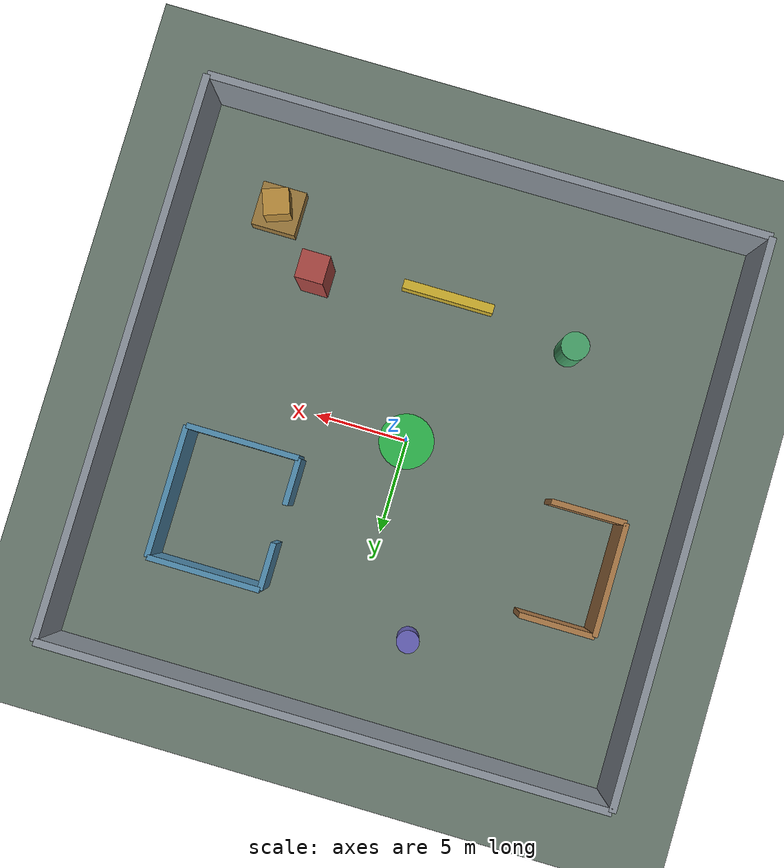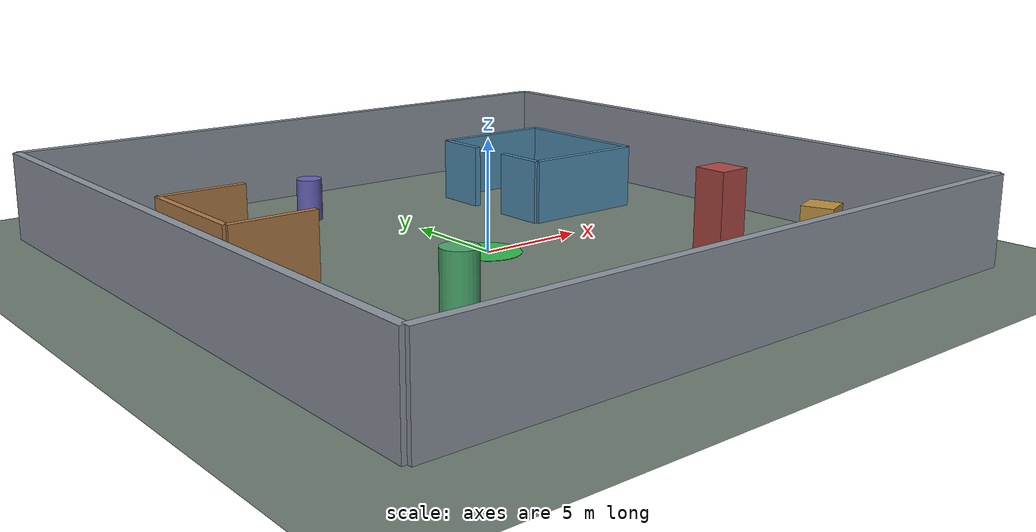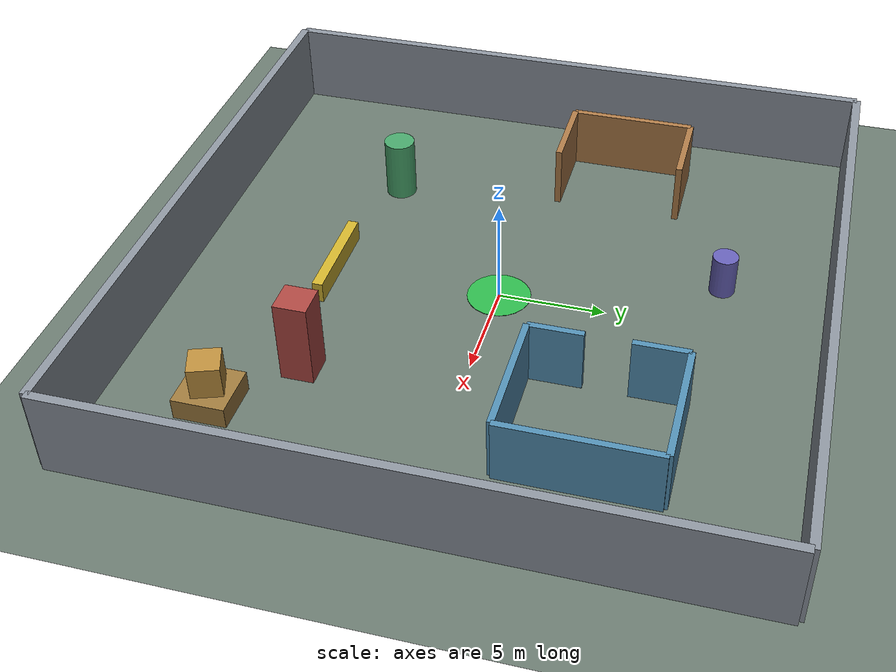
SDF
<?xml version="1.0" encoding="UTF-8"?>
<sdf version="1.9">
  <world name="mapping_test">
    <!-- Match PX4 v1.17's default Gazebo physics settings. -->
    <physics type="ode">
      <max_step_size>0.004</max_step_size>
      <real_time_factor>1.0</real_time_factor>
      <real_time_update_rate>250</real_time_update_rate>
    </physics>

    <gravity>0 0 -9.8</gravity>
    <magnetic_field>6e-06 2.3e-05 -4.2e-05</magnetic_field>
    <atmosphere type="adiabatic"/>

    <scene>
      <grid>true</grid>
      <ambient>0.45 0.45 0.45 1</ambient>
      <background>0.72 0.78 0.82 1</background>
      <shadows>true</shadows>
    </scene>

    <!--
      Start south of the X500 looking north. This aligns the initial Gazebo
      view with the drone's initial heading, so W looks like forward motion.
    -->
    <gui fullscreen="false">
      <plugin filename="MinimalScene" name="3D View">
        <gz-gui>
          <title>3D View</title>
          <property type="bool" key="showTitleBar">false</property>
          <property type="string" key="state">docked</property>
        </gz-gui>
        <engine>ogre2</engine>
        <scene>scene</scene>
        <ambient_light>0.45 0.45 0.45</ambient_light>
        <background_color>0.72 0.78 0.82</background_color>
        <camera_pose>0 -6 6 0 0.5 1.5708</camera_pose>
        <camera_clip>
          <near>0.25</near>
          <far>25000</far>
        </camera_clip>
      </plugin>

      <!-- Preserve PX4's standard Gazebo scene controls around the new view. -->
      <plugin filename="EntityContextMenuPlugin" name="Entity context menu">
        <gz-gui>
          <property key="state" type="string">floating</property>
          <property key="width" type="double">5</property>
          <property key="height" type="double">5</property>
          <property key="showTitleBar" type="bool">false</property>
        </gz-gui>
      </plugin>
      <plugin filename="GzSceneManager" name="Scene Manager">
        <gz-gui>
          <property key="resizable" type="bool">false</property>
          <property key="width" type="double">5</property>
          <property key="height" type="double">5</property>
          <property key="state" type="string">floating</property>
          <property key="showTitleBar" type="bool">false</property>
        </gz-gui>
      </plugin>
      <plugin filename="InteractiveViewControl" name="Interactive view control">
        <gz-gui>
          <property key="resizable" type="bool">false</property>
          <property key="width" type="double">5</property>
          <property key="height" type="double">5</property>
          <property key="state" type="string">floating</property>
          <property key="showTitleBar" type="bool">false</property>
        </gz-gui>
      </plugin>
      <plugin filename="CameraTracking" name="Camera Tracking">
        <gz-gui>
          <property key="resizable" type="bool">false</property>
          <property key="width" type="double">5</property>
          <property key="height" type="double">5</property>
          <property key="state" type="string">floating</property>
          <property key="showTitleBar" type="bool">false</property>
        </gz-gui>
      </plugin>
      <plugin filename="MarkerManager" name="Marker manager">
        <gz-gui>
          <property key="resizable" type="bool">false</property>
          <property key="width" type="double">5</property>
          <property key="height" type="double">5</property>
          <property key="state" type="string">floating</property>
          <property key="showTitleBar" type="bool">false</property>
        </gz-gui>
      </plugin>
      <plugin filename="SelectEntities" name="Select Entities">
        <gz-gui>
          <property key="resizable" type="bool">false</property>
          <property key="width" type="double">5</property>
          <property key="height" type="double">5</property>
          <property key="state" type="string">floating</property>
          <property key="showTitleBar" type="bool">false</property>
        </gz-gui>
      </plugin>
      <plugin filename="Spawn" name="Spawn Entities">
        <gz-gui>
          <property key="resizable" type="bool">false</property>
          <property key="width" type="double">5</property>
          <property key="height" type="double">5</property>
          <property key="state" type="string">floating</property>
          <property key="showTitleBar" type="bool">false</property>
        </gz-gui>
      </plugin>
      <plugin filename="VisualizationCapabilities" name="Visualization Capabilities">
        <gz-gui>
          <property key="resizable" type="bool">false</property>
          <property key="width" type="double">5</property>
          <property key="height" type="double">5</property>
          <property key="state" type="string">floating</property>
          <property key="showTitleBar" type="bool">false</property>
        </gz-gui>
      </plugin>

      <plugin filename="WorldControl" name="World control">
        <gz-gui>
          <title>World control</title>
          <property type="bool" key="showTitleBar">false</property>
          <property type="bool" key="resizable">false</property>
          <property type="double" key="height">72</property>
          <property type="double" key="width">121</property>
          <property type="double" key="z">1</property>
          <property type="string" key="state">floating</property>
          <anchors target="3D View">
            <line own="left" target="left"/>
            <line own="bottom" target="bottom"/>
          </anchors>
        </gz-gui>
        <play_pause>true</play_pause>
        <step>true</step>
        <start_paused>true</start_paused>
      </plugin>

      <plugin filename="WorldStats" name="World stats">
        <gz-gui>
          <title>World stats</title>
          <property type="bool" key="showTitleBar">false</property>
          <property type="bool" key="resizable">false</property>
          <property type="double" key="height">110</property>
          <property type="double" key="width">290</property>
          <property type="double" key="z">1</property>
          <property type="string" key="state">floating</property>
          <anchors target="3D View">
            <line own="right" target="right"/>
            <line own="bottom" target="bottom"/>
          </anchors>
        </gz-gui>
        <sim_time>true</sim_time>
        <real_time>true</real_time>
        <real_time_factor>true</real_time_factor>
        <iterations>true</iterations>
      </plugin>

      <plugin filename="EntityTree" name="Entity tree"/>
    </gui>

    <model name="ground_plane">
      <static>true</static>
      <link name="ground_link">
        <collision name="ground_collision">
          <geometry>
            <plane>
              <normal>0 0 1</normal>
              <size>50 50</size>
            </plane>
          </geometry>
          <surface>
            <friction>
              <ode/>
            </friction>
            <bounce/>
            <contact/>
          </surface>
        </collision>

        <visual name="ground_visual">
          <geometry>
            <plane>
              <normal>0 0 1</normal>
              <size>50 50</size>
            </plane>
          </geometry>
          <material>
            <ambient>0.32 0.36 0.34 1</ambient>
            <diffuse>0.42 0.48 0.44 1</diffuse>
            <specular>0.08 0.08 0.08 1</specular>
          </material>
        </visual>
      </link>
    </model>

    <!--
      All obstacles share one static link. Each collision has a matching visual
      at the same pose and size so the LiDAR sees the geometry shown in Gazebo.
    -->
    <model name="mapping_geometry">
      <static>true</static>
      <link name="obstacles">
        <!-- Perimeter walls: a 30 m by 30 m flying area. -->
        <collision name="north_wall_collision">
          <pose>0 15 2 0 0 0</pose>
          <geometry><box><size>30 0.4 4</size></box></geometry>
        </collision>
        <visual name="north_wall_visual">
          <pose>0 15 2 0 0 0</pose>
          <geometry><box><size>30 0.4 4</size></box></geometry>
          <material>
            <ambient>0.35 0.38 0.42 1</ambient>
            <diffuse>0.55 0.58 0.62 1</diffuse>
          </material>
        </visual>

        <collision name="south_wall_collision">
          <pose>0 -15 2 0 0 0</pose>
          <geometry><box><size>30 0.4 4</size></box></geometry>
        </collision>
        <visual name="south_wall_visual">
          <pose>0 -15 2 0 0 0</pose>
          <geometry><box><size>30 0.4 4</size></box></geometry>
          <material>
            <ambient>0.35 0.38 0.42 1</ambient>
            <diffuse>0.55 0.58 0.62 1</diffuse>
          </material>
        </visual>

        <collision name="east_wall_collision">
          <pose>15 0 2 0 0 0</pose>
          <geometry><box><size>0.4 30 4</size></box></geometry>
        </collision>
        <visual name="east_wall_visual">
          <pose>15 0 2 0 0 0</pose>
          <geometry><box><size>0.4 30 4</size></box></geometry>
          <material>
            <ambient>0.35 0.38 0.42 1</ambient>
            <diffuse>0.55 0.58 0.62 1</diffuse>
          </material>
        </visual>

        <collision name="west_wall_collision">
          <pose>-15 0 2 0 0 0</pose>
          <geometry><box><size>0.4 30 4</size></box></geometry>
        </collision>
        <visual name="west_wall_visual">
          <pose>-15 0 2 0 0 0</pose>
          <geometry><box><size>0.4 30 4</size></box></geometry>
          <material>
            <ambient>0.35 0.38 0.42 1</ambient>
            <diffuse>0.55 0.58 0.62 1</diffuse>
          </material>
        </visual>

        <!-- Interior room in the northeast, with a west-facing doorway. -->
        <collision name="room_north_collision">
          <pose>8 9.5 1.5 0 0 0</pose>
          <geometry><box><size>6 0.3 3</size></box></geometry>
        </collision>
        <visual name="room_north_visual">
          <pose>8 9.5 1.5 0 0 0</pose>
          <geometry><box><size>6 0.3 3</size></box></geometry>
          <material>
            <ambient>0.22 0.36 0.46 1</ambient>
            <diffuse>0.32 0.56 0.70 1</diffuse>
          </material>
        </visual>

        <collision name="room_south_collision">
          <pose>8 2.5 1.5 0 0 0</pose>
          <geometry><box><size>6 0.3 3</size></box></geometry>
        </collision>
        <visual name="room_south_visual">
          <pose>8 2.5 1.5 0 0 0</pose>
          <geometry><box><size>6 0.3 3</size></box></geometry>
          <material>
            <ambient>0.22 0.36 0.46 1</ambient>
            <diffuse>0.32 0.56 0.70 1</diffuse>
          </material>
        </visual>

        <collision name="room_east_collision">
          <pose>11 6 1.5 0 0 0</pose>
          <geometry><box><size>0.3 7 3</size></box></geometry>
        </collision>
        <visual name="room_east_visual">
          <pose>11 6 1.5 0 0 0</pose>
          <geometry><box><size>0.3 7 3</size></box></geometry>
          <material>
            <ambient>0.22 0.36 0.46 1</ambient>
            <diffuse>0.32 0.56 0.70 1</diffuse>
          </material>
        </visual>

        <collision name="room_west_north_collision">
          <pose>5 8.25 1.5 0 0 0</pose>
          <geometry><box><size>0.3 2.5 3</size></box></geometry>
        </collision>
        <visual name="room_west_north_visual">
          <pose>5 8.25 1.5 0 0 0</pose>
          <geometry><box><size>0.3 2.5 3</size></box></geometry>
          <material>
            <ambient>0.22 0.36 0.46 1</ambient>
            <diffuse>0.32 0.56 0.70 1</diffuse>
          </material>
        </visual>

        <collision name="room_west_south_collision">
          <pose>5 3.75 1.5 0 0 0</pose>
          <geometry><box><size>0.3 2.5 3</size></box></geometry>
        </collision>
        <visual name="room_west_south_visual">
          <pose>5 3.75 1.5 0 0 0</pose>
          <geometry><box><size>0.3 2.5 3</size></box></geometry>
          <material>
            <ambient>0.22 0.36 0.46 1</ambient>
            <diffuse>0.32 0.56 0.70 1</diffuse>
          </material>
        </visual>

        <!-- A three-sided alcove, open toward the takeoff area. -->
        <collision name="alcove_back_collision">
          <pose>-12 4 1.5 0 0 0</pose>
          <geometry><box><size>0.3 6 3</size></box></geometry>
        </collision>
        <visual name="alcove_back_visual">
          <pose>-12 4 1.5 0 0 0</pose>
          <geometry><box><size>0.3 6 3</size></box></geometry>
          <material>
            <ambient>0.48 0.32 0.20 1</ambient>
            <diffuse>0.68 0.48 0.28 1</diffuse>
          </material>
        </visual>

        <collision name="alcove_north_collision">
          <pose>-10 7 1.5 0 0 0</pose>
          <geometry><box><size>4 0.3 3</size></box></geometry>
        </collision>
        <visual name="alcove_north_visual">
          <pose>-10 7 1.5 0 0 0</pose>
          <geometry><box><size>4 0.3 3</size></box></geometry>
          <material>
            <ambient>0.48 0.32 0.20 1</ambient>
            <diffuse>0.68 0.48 0.28 1</diffuse>
          </material>
        </visual>

        <collision name="alcove_south_collision">
          <pose>-10 1 1.5 0 0 0</pose>
          <geometry><box><size>4 0.3 3</size></box></geometry>
        </collision>
        <visual name="alcove_south_visual">
          <pose>-10 1 1.5 0 0 0</pose>
          <geometry><box><size>4 0.3 3</size></box></geometry>
          <material>
            <ambient>0.48 0.32 0.20 1</ambient>
            <diffuse>0.68 0.48 0.28 1</diffuse>
          </material>
        </visual>

        <!-- Height and shape variation for recognizable LiDAR geometry. -->
        <collision name="low_barrier_collision">
          <pose>0 -8 0.5 0 0 0</pose>
          <geometry><box><size>5 0.5 1</size></box></geometry>
        </collision>
        <visual name="low_barrier_visual">
          <pose>0 -8 0.5 0 0 0</pose>
          <geometry><box><size>5 0.5 1</size></box></geometry>
          <material>
            <ambient>0.55 0.46 0.12 1</ambient>
            <diffuse>0.82 0.70 0.18 1</diffuse>
          </material>
        </visual>

        <collision name="box_pillar_collision">
          <pose>7 -7 2 0 0 0</pose>
          <geometry><box><size>1.5 1.5 4</size></box></geometry>
        </collision>
        <visual name="box_pillar_visual">
          <pose>7 -7 2 0 0 0</pose>
          <geometry><box><size>1.5 1.5 4</size></box></geometry>
          <material>
            <ambient>0.38 0.18 0.18 1</ambient>
            <diffuse>0.68 0.28 0.26 1</diffuse>
          </material>
        </visual>

        <collision name="round_pillar_tall_collision">
          <pose>-7 -7 1.5 0 0 0</pose>
          <geometry><cylinder><radius>0.75</radius><length>3</length></cylinder></geometry>
        </collision>
        <visual name="round_pillar_tall_visual">
          <pose>-7 -7 1.5 0 0 0</pose>
          <geometry><cylinder><radius>0.75</radius><length>3</length></cylinder></geometry>
          <material>
            <ambient>0.20 0.38 0.28 1</ambient>
            <diffuse>0.28 0.65 0.42 1</diffuse>
          </material>
        </visual>

        <collision name="round_pillar_short_collision">
          <pose>-3 10 1 0 0 0</pose>
          <geometry><cylinder><radius>0.6</radius><length>2</length></cylinder></geometry>
        </collision>
        <visual name="round_pillar_short_visual">
          <pose>-3 10 1 0 0 0</pose>
          <geometry><cylinder><radius>0.6</radius><length>2</length></cylinder></geometry>
          <material>
            <ambient>0.26 0.24 0.45 1</ambient>
            <diffuse>0.40 0.38 0.72 1</diffuse>
          </material>
        </visual>

        <collision name="stacked_box_base_collision">
          <pose>10 -10 0.5 0 0 0</pose>
          <geometry><box><size>2.4 2.4 1</size></box></geometry>
        </collision>
        <visual name="stacked_box_base_visual">
          <pose>10 -10 0.5 0 0 0</pose>
          <geometry><box><size>2.4 2.4 1</size></box></geometry>
          <material>
            <ambient>0.38 0.30 0.16 1</ambient>
            <diffuse>0.62 0.48 0.24 1</diffuse>
          </material>
        </visual>

        <collision name="stacked_box_top_collision">
          <pose>10 -10 1.75 0 0 0.35</pose>
          <geometry><box><size>1.4 1.4 1.5</size></box></geometry>
        </collision>
        <visual name="stacked_box_top_visual">
          <pose>10 -10 1.75 0 0 0.35</pose>
          <geometry><box><size>1.4 1.4 1.5</size></box></geometry>
          <material>
            <ambient>0.48 0.36 0.16 1</ambient>
            <diffuse>0.74 0.56 0.24 1</diffuse>
          </material>
        </visual>

        <!-- Visual-only landing marker; it cannot collide with the X500. -->
        <visual name="landing_marker_visual">
          <pose>0 0 0.015 0 0 0</pose>
          <geometry><cylinder><radius>1.5</radius><length>0.02</length></cylinder></geometry>
          <material>
            <ambient>0.12 0.38 0.18 1</ambient>
            <diffuse>0.18 0.72 0.30 1</diffuse>
          </material>
        </visual>
      </link>
    </model>

    <light name="sunUTC" type="directional">
      <pose>0 0 500 0 0 0</pose>
      <cast_shadows>true</cast_shadows>
      <intensity>1</intensity>
      <direction>0.001 0.625 -0.78</direction>
      <diffuse>0.904 0.904 0.904 1</diffuse>
      <specular>0.271 0.271 0.271 1</specular>
      <attenuation>
        <range>2000</range>
        <linear>0</linear>
        <constant>1</constant>
        <quadratic>0</quadratic>
      </attenuation>
    </light>

    <!-- Match PX4's default simulated geographic origin and ENU world frame. -->
    <spherical_coordinates>
      <surface_model>EARTH_WGS84</surface_model>
      <world_frame_orientation>ENU</world_frame_orientation>
      <latitude_deg>47.397971057728974</latitude_deg>
      <longitude_deg>8.546163739800146</longitude_deg>
      <elevation>0</elevation>
    </spherical_coordinates>
  </world>
</sdf>
